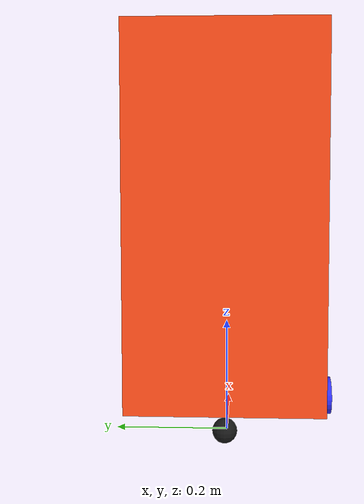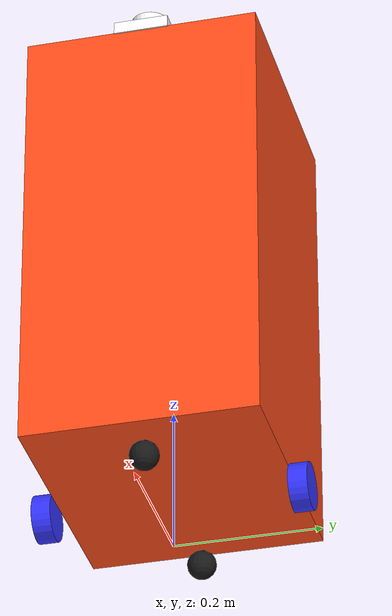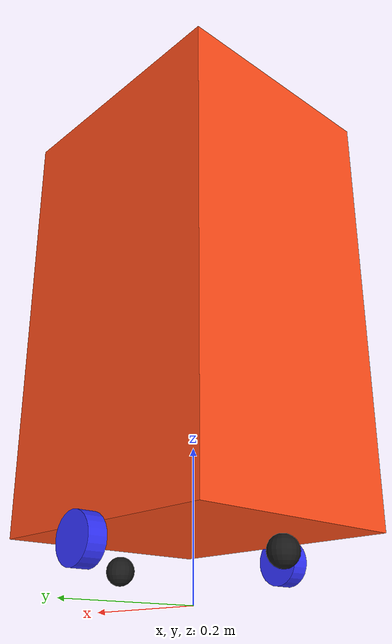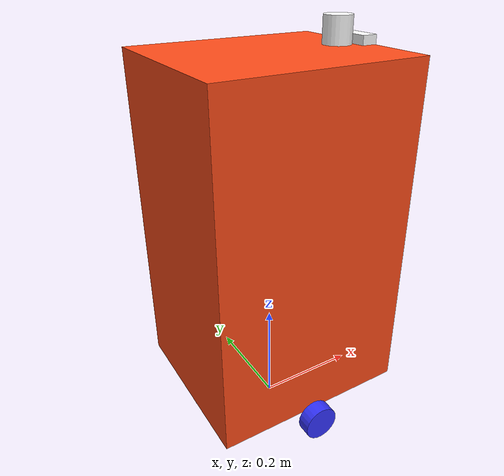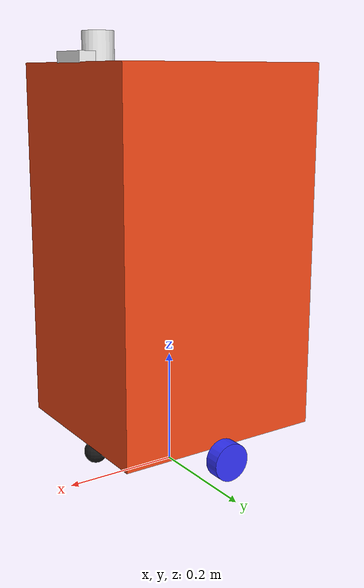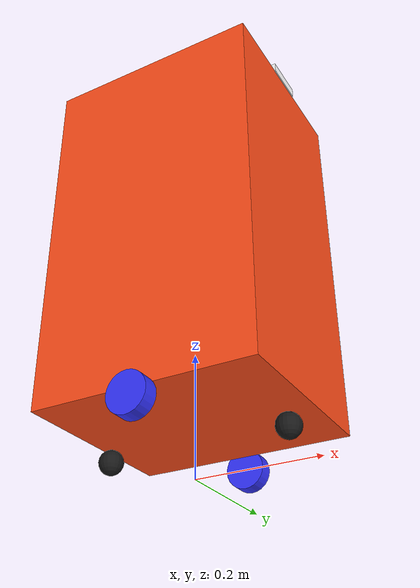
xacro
<?xml version="1.0"?>
<robot xmlns:xacro="http://www.ros.org/wiki/xacro" name="robot">
    <!-- filename: robot.urdf.xacro -->
    <xacro:include filename="robot_core.xacro" />
    <xacro:include filename="inertial_macros.xacro" />
    <xacro:include filename="ros2_control.xacro" />
    <xacro:include filename="lidar.xacro" />
    <xacro:include filename="depth_camera.xacro" />

    <!-- Gazebo system plugins for sensors and joint state publisher -->
    <gazebo>
        <plugin name="gz::sim::systems::Sensors" filename="gz-sim-sensors-system" />
        <plugin name="gz::sim::systems::JointStatePublisher" filename="gz-sim-joint-state-publisher-system" />
        <plugin name="gz::sim::systems::DiffDrive" filename="gz-sim-diff-drive-system" />
    </gazebo>
</robot>

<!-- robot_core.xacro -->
<robot xmlns:xacro="http://www.ros.org/wiki/xacro">

    <xacro:include filename="inertial_macros.xacro" />

    <!-- MATERIALS -->
    <material name="black">
        <color rgba="0.1 0.1 0.1 1" />
    </material>

    <material name="white">
        <color rgba="1 1 1 1" />
    </material>

    <material name="blue">
        <color rgba="0.2 0.2 1  1" />
    </material>

    <material name="orange">
        <color rgba="1 0.3 0.1 1" />
    </material>

    <material name="red">
        <color rgba="1 0.1 0.1 1" />
    </material>

    <!-- DIMENSIONS -->

    <!-- XYZ
        x points towards front
        y points left
        z points up
    -->

    <!-- RPY
        R = roll (rotation around x-axis)
        P = pitch (rotation around y-axis)
        Y = yaw (rotation around z-axis)
    -->

    <xacro:property name="chassis_depth" value="0.368" />
    <xacro:property name="chassis_width" value="0.321" />
    <xacro:property name="chassis_height" value="0.620" />

    <xacro:property name="wheel_diameter" value="0.065" />
    <xacro:property name="wheel_radius" value="${wheel_diameter / 2}" />
    <xacro:property name="wheel_length" value="0.026" />

    <!-- the motor mount affects axis of wheels by -20mm from base -->
    <xacro:property name="motor_mount_offset" value="0.020" />

    <!-- if tires are touching ground, then base is offset by 52.5mm    -->
    <xacro:property name="chassis_z" value="${(wheel_radius + motor_mount_offset) + chassis_height / 2}" />

    <!--
        origin should be center of the wheelbase axis, wheel radius from the front of the chassis
    -->
    <xacro:property name="wheelbase_x" value="${chassis_depth / 2}" />
    <xacro:property name="wheelbase_y" value="${chassis_width / 2}" />
    <xacro:property name="wheel_y" value="${wheelbase_y + (wheel_length / 2)}" />

    <xacro:property name="caster_x" value="- ${chassis_width / 3} - ${wheel_radius}" />

   <!-- BASE FOOTPRINT - for odometry on ground plane -->
    <link name="base_footprint">
    </link>

    <!-- BASE LINK -->
    <link name="base_link">
    </link>

    <!-- Joint connecting base_footprint to base_link -->
    <joint name="base_footprint_to_base_link" type="fixed">
        <parent link="base_footprint" />
        <child link="base_link" />
        <origin xyz="0 0 ${wheel_radius}" rpy="0 0 0" />
    </joint>

    <!-- CHASSIS  Joint + Link -->
    <joint name="chassis_to_base_link" type="fixed">
        <parent link="base_link" />
        <child link="chassis" />
        <origin xyz="0 0 0" rpy="0 0 0" /> <!-- Centered on origin -->
    </joint>

    <link name="chassis">
        <visual>
            <origin xyz="0 0 ${chassis_z}" rpy="0 0 0" /> <!-- Centered on origin -->
            <geometry>
                <box size="${chassis_depth} ${chassis_width} ${chassis_height}" />
            </geometry>
            <material name="orange" />
        </visual>
        <collision>
            <origin xyz="0 0 ${chassis_z}" rpy="0 0 0" /> <!-- Centered on origin -->
            <geometry>
                <box size="${chassis_depth} ${chassis_width} ${chassis_height}" />
            </geometry>
        </collision>
        <xacro:inertial_box mass="7.5" x="${chassis_depth}" y="${chassis_width}"
            z="${chassis_height}">
            <origin xyz="0 0 ${chassis_z}" rpy="0 0 0" /> <!-- Centered on origin -->
        </xacro:inertial_box>
    </link>

    <gazebo reference="chassis">
        <material>Gazebo/Orange</material>
    </gazebo>

    <!-- LEFT WHEEL Joint + Link -->

    <joint name="left_wheel_to_base_link" type="continuous">
        <parent link="base_link" />
        <child link="left_wheel" />
        <origin xyz="0 ${wheel_y} ${wheel_radius}" rpy="0 0 0" />
        <axis xyz="0 1 0" />
    </joint>

    <link name="left_wheel">
        <visual>
            <origin xyz="0 0 0" rpy="${pi/2} 0 0" />
            <geometry>
                <cylinder radius="${wheel_radius}" length="${wheel_length}" />
            </geometry>
            <material name="blue" />
        </visual>
        <collision>
            <origin xyz="0 0 0" rpy="${pi/2} 0 0" />
            <geometry>
                <cylinder radius="${wheel_radius}" length="${wheel_length}" />
            </geometry>
        </collision>
        <xacro:inertial_cylinder mass="0.1" length="${wheel_length}" radius="${wheel_radius}">
            <origin xyz="0 0 0" rpy="${pi/2} 0 0" />
        </xacro:inertial_cylinder>
    </link>

    <gazebo reference="left_wheel">
        <material>Gazebo/Blue</material>
    </gazebo>

    <!-- RIGHT WHEEL Joint + Link -->

    <joint name="right_wheel_to_base_link" type="continuous">
        <parent link="base_link" />
        <child link="right_wheel" />
        <origin xyz="0 -${wheel_y} ${wheel_radius}" rpy="0 0 0" />
        <axis xyz="0 1 0" />
    </joint>

    <link name="right_wheel">
        <visual>
            <origin xyz="0 0 0" rpy="${pi/2} 0 0" />
            <geometry>
                <cylinder radius="${wheel_radius}" length="${wheel_length}" />
            </geometry>
            <material name="blue" />
        </visual>
        <collision>
            <origin xyz="0 0 0" rpy="${pi/2} 0 0" />
            <geometry>
                <cylinder radius="${wheel_radius}" length="${wheel_length}" />
            </geometry>
        </collision>
        <xacro:inertial_cylinder mass="0.1" length="${wheel_length}" radius="${wheel_radius}">
            <origin xyz="0 0 0" rpy="${pi/2} 0 0" />
        </xacro:inertial_cylinder>
    </link>

    <gazebo reference="right_wheel">
        <material>Gazebo/Blue</material>
    </gazebo>

    <!-- CASTER WHEEL (Spherical, for simulation stability) -->
    <joint name="caster_wheel_f_joint" type="fixed">
        <parent link="base_link" />
        <child link="caster_wheel_f" />
        <origin xyz="-${(wheelbase_x) - (wheel_radius)} 0 0.02" rpy="0 0 0" />
    </joint>

    <link name="caster_wheel_f">
        <visual>
            <geometry>
                <sphere radius="0.02" />
            </geometry>
            <material name="black" />
        </visual>
        <collision>
            <geometry>
                <sphere radius="0.02" />
            </geometry>
        </collision>
        <xacro:inertial_sphere mass="0.1" radius="0.02">
            <origin xyz="0 0 0" rpy="0 0 0" />
        </xacro:inertial_sphere>
    </link>

    <gazebo reference="caster_wheel_f">
        <material>Gazebo/Blue</material>
        <mu1 value="0.001" />
        <mu2 value="0.001" />
    </gazebo>

    <!-- CASTER WHEEL (Spherical, for simulation stability) -->
    <joint name="caster_wheel_b_joint" type="fixed">
        <parent link="base_link" />
        <child link="caster_wheel_b" />
        <origin xyz="${(wheelbase_x) - (wheel_radius)} 0 0.02" rpy="0 0 0" />
    </joint>

    <link name="caster_wheel_b">
        <visual>
            <geometry>
                <sphere radius="0.02" />
            </geometry>
            <material name="black" />
        </visual>
        <collision>
            <geometry>
                <sphere radius="0.02" />
            </geometry>
        </collision>
        <xacro:inertial_sphere mass="0.1" radius="0.02">
            <origin xyz="0 0 0" rpy="0 0 0" />
        </xacro:inertial_sphere>
    </link>

    <gazebo reference="caster_wheel_b">
        <material>Gazebo/Blue</material>
        <mu1 value="0.001" />
        <mu2 value="0.001" />
    </gazebo>

</robot>

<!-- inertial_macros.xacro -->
<robot xmlns:xacro="http://www.ros.org/wiki/xacro">
    <!-- filename: inertial_macros.xacro -->
    <!-- Specify some standard inertial calculations
    https://en.wikipedia.org/wiki/List_of_moments_of_inertia -->
    <!-- These make use of xacro's mathematical functionality -->

    <xacro:macro name="inertial_sphere" params="mass radius *origin">
        <inertial>
            <xacro:insert_block name="origin" />
            <mass value="${mass}" />
            <inertia ixx="${(2/5) * mass * (radius*radius)}" ixy="0.0" ixz="0.0"
                iyy="${(2/5) * mass * (radius*radius)}" iyz="0.0"
                izz="${(2/5) * mass * (radius*radius)}" />
        </inertial>
    </xacro:macro>

    <xacro:macro name="inertial_box" params="mass x y z *origin">
        <inertial>
            <xacro:insert_block name="origin" />
            <mass value="${mass}" />
            <inertia ixx="${(1/12) * mass * (y*y+z*z)}" ixy="0.0" ixz="0.0"
                iyy="${(1/12) * mass * (x*x+z*z)}" iyz="0.0"
                izz="${(1/12) * mass * (x*x+y*y)}" />
        </inertial>
    </xacro:macro>

    <xacro:macro name="inertial_cylinder" params="mass length radius *origin">
        <inertial>
            <xacro:insert_block name="origin" />
            <mass value="${mass}" />
            <inertia ixx="${(1/12) * mass * (3*radius*radius + length*length)}" ixy="0.0" ixz="0.0"
                iyy="${(1/12) * mass * (3*radius*radius + length*length)}" iyz="0.0"
                izz="${(1/2) * mass * (radius*radius)}" />
        </inertial>
    </xacro:macro>

</robot>

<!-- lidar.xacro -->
<robot xmlns:xacro="http://www.ros.org/wiki/xacro">
    <!-- filename: lidar.xacro -->

    <!-- Define fallback properties - these will be overridden if already defined -->
    <xacro:property name="chassis_depth" value="0.368" />
    <xacro:property name="chassis_height" value="0.62" />

    <xacro:property name="lidar_sensor_diameter" value="0.051" />
    <xacro:property name="lidar_sensor_height" value="0.045" />

    <!-- Place lidar just above chassis -->
    <joint name="lidar_joint" type="fixed">
        <parent link="base_link" />
        <child link="lidar_frame" />
        <origin xyz="${chassis_depth/2 - (lidar_sensor_diameter)} 0 ${chassis_height + 0.075}" rpy="0 0 3.14159" /> <!-- Rotated 180 degrees in yaw -->
    </joint>

    <link name="lidar_frame">
        <visual>
            <origin xyz="0 0 0" rpy="0 0 0" />
            <geometry>
                <cylinder radius="${lidar_sensor_diameter / 2}" length="0.05" />
            </geometry>
            <material name="white" />
        </visual>
        <collision>
            <origin xyz="0 0 0" rpy="0 0 0" />
            <geometry>
                <cylinder radius="${lidar_sensor_diameter / 2}" length="0.01" />
            </geometry>
        </collision>
        <inertial>
            <mass value="1.0" />
            <origin xyz="0 0 0" rpy="0 0 0" />
            <inertia ixx="1e-3" ixy="0" ixz="0" iyy="1e-3" iyz="0" izz="1e-3" />
        </inertial>
    </link>

    <gazebo reference="lidar_frame">
        <material>Gazebo/White</material>
        <sensor name="laser" type="gpu_lidar">
        <pose>0 0 0 0 0 0</pose>
        <update_rate>10</update_rate>
        <topic>scan</topic>
        <always_on>1</always_on>
        <visualize>true</visualize>
        <lidar>
          <scan>
            <horizontal>
              <samples>360</samples>
              <resolution>1</resolution>
              <min_angle>-3.14</min_angle>
              <max_angle>3.14</max_angle>
            </horizontal>
          </scan>
          <range>
            <min>0.3</min>
            <max>12.0</max>
            <resolution>0.01</resolution>
          </range>
        </lidar>
      </sensor>
    </gazebo>

</robot>

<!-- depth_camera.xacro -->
<robot xmlns:xacro="http://www.ros.org/wiki/xacro">
  <!-- Filename: depth_camera.xacro -->

  <!-- Define fallback properties - these will be overridden if already defined -->
  <xacro:property name="chassis_depth" value="0.368" />
  <xacro:property name="chassis_height" value="0.62" />

  <!-- Place depth camera at front of chassis -->
  <joint name="depth_camera_joint" type="fixed">
    <parent link="base_link" />
    <child link="depth_camera_link" />
    <origin xyz="${chassis_depth/2 - 0.012} 0 ${chassis_height + 0.060}" rpy="0 0 0" />
  </joint>

  <link name="depth_camera_link">
    <visual>
      <origin xyz="0 0 0" rpy="0 0 0" />
      <geometry>
        <box size="0.028 0.075 0.0175" /> <!-- 75mm x 28mm x 17.5mm -->
      </geometry>
      <material name="white" />
    </visual>
    <collision>
      <origin xyz="0 0 0" rpy="0 0 0" />
      <geometry>
        <box size="0.028 0.075 0.0175" />
      </geometry>
    </collision>
    <inertial>
      <origin xyz="0 0 0" rpy="0 0 0" />
      <mass value="0.05" /> <!-- Approximate mass in kg -->
      <inertia ixx="1e-5" ixy="0" ixz="0" iyy="1e-5" iyz="0" izz="1e-5" /> <!-- Simple inertia -->
    </inertial>
  </link>

  <joint name="depth_camera_optical_joint" type="fixed">
    <parent link="depth_camera_link" />
    <child link="depth_camera_link_optical" />
    <origin xyz="0 0 0" rpy="${-pi/2} 0 ${-pi/2}" />
  </joint>

  <link name="depth_camera_link_optical" />

  <gazebo reference="depth_camera_link">
    <material>Gazebo/White</material>
    <sensor name="depth_camera" type="depth">
      <update_rate>10</update_rate>
      <always_on>1</always_on>
      <visualize>true</visualize>
      <topic>depth_camera</topic>
      <camera>
        <horizontal_fov>1.089</horizontal_fov>
        <image>
          <width>640</width>
          <height>480</height>
          <format>R_FLOAT32</format> <!-- Depth format, not RGB -->
        </image>
        <clip>
          <near>0.05</near>
          <far>8.0</far>
        </clip>
        <depth_camera>
          <output>depths</output>
        </depth_camera>
      </camera>
    </sensor>
  </gazebo>

</robot>
